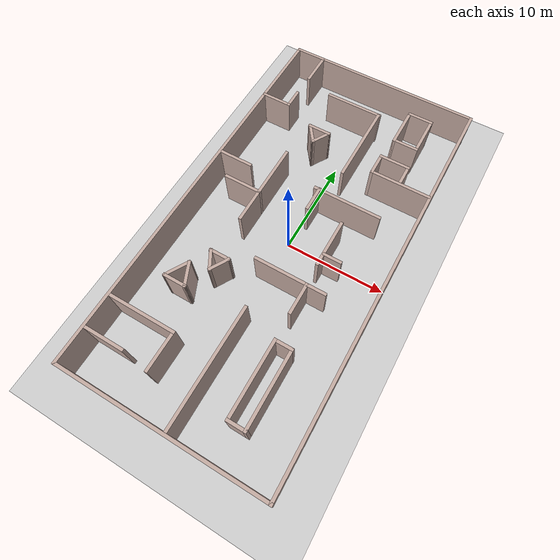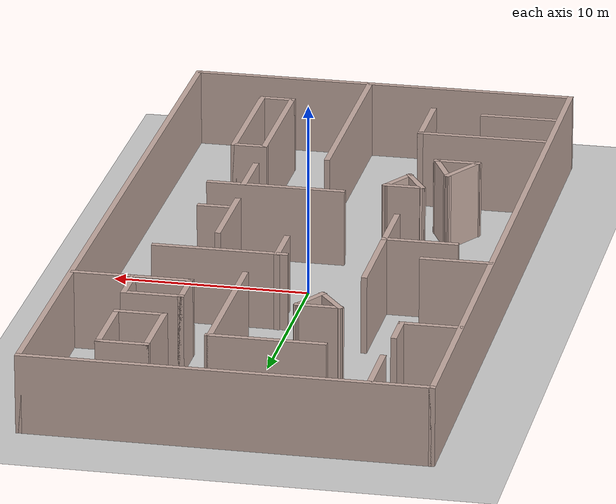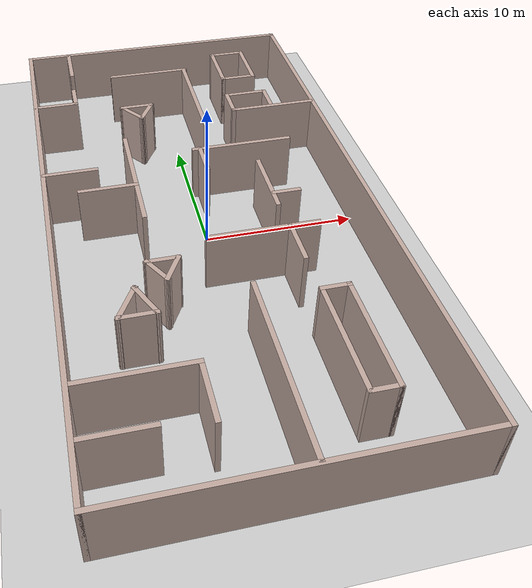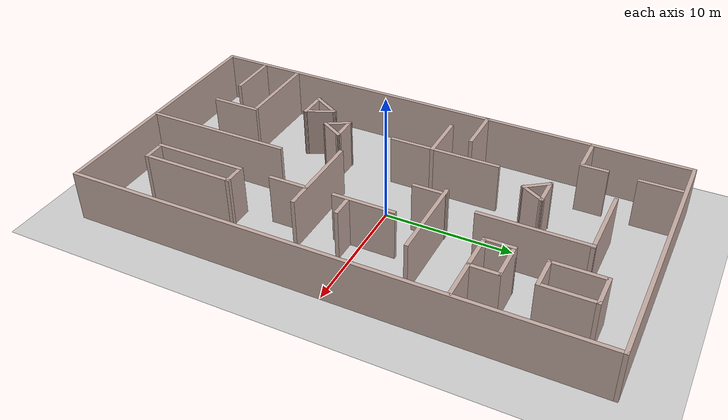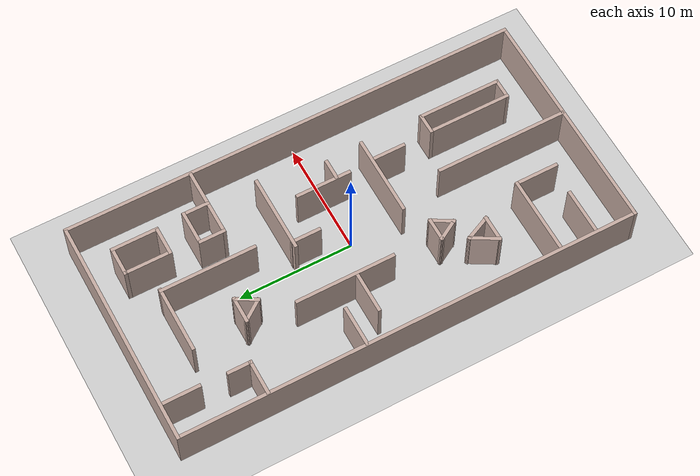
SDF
<sdf version="1.7">
 <world name="default">
  <plugin name="ros_interface_plugin" filename="librotors_gazebo_ros_interface_plugin.so"/>
  <light name="sun" type="directional">
   <pose>0 0 10 0 -0 0</pose>
   <diffuse>0.8 0.8 0.8 1</diffuse>
   <specular>0.2 0.2 0.2 1</specular>
   <attenuation>
    <range>1000</range>
    <constant>0.9</constant>
    <linear>0.01</linear>
    <quadratic>0.001</quadratic>
   </attenuation>
   <direction>-0.5 0.1 -0.9</direction>
   <spot><inner_angle>0</inner_angle><outer_angle>0</outer_angle><falloff>0</falloff></spot>
  </light>
  <model name="ground_plane">
   <static>1</static>
   <link name="link">
    <collision name="collision">
     <geometry><plane><normal>0 0 1</normal><size>100 100</size></plane></geometry>
     <surface><friction><ode><mu>100</mu><mu2>50</mu2></ode></friction></surface>
    </collision>
    <visual name="visual">
     <cast_shadows>0</cast_shadows>
     <geometry><plane><normal>0 0 1</normal><size>100 100</size></plane></geometry>
     <material>
      <script><uri>file://media/materials/scripts/gazebo.material</uri><name>Gazebo/Grey</name></script>
     </material>
    </visual>
   </link>
  </model>
  <gravity>0 0 -9.8</gravity>
  <magnetic_field>6e-06 2.3e-05 -4.2e-05</magnetic_field>
  <atmosphere type="adiabatic"/>
  <physics type="ode">
   <max_step_size>0.001</max_step_size>
   <real_time_factor>1</real_time_factor>
   <real_time_update_rate>1000</real_time_update_rate>
  </physics>
  <scene><ambient>0.4 0.4 0.4 1</ambient><background>0.7 0.7 0.7 1</background><shadows>1</shadows></scene>
  <spherical_coordinates>
   <surface_model>EARTH_WGS84</surface_model>
   <latitude_deg>0</latitude_deg>
   <longitude_deg>0</longitude_deg>
   <elevation>0</elevation>
   <heading_deg>0</heading_deg>
  </spherical_coordinates>
  <model name="Untitled">
   <link name="Wall_0">
    <collision name="Wall_0_Collision">
     <geometry><box><size>40.3 0.3 4</size></box></geometry>
     <pose>0 0 2 0 -0 0</pose>
    </collision>
    <visual name="Wall_0_Visual">
     <pose>0 0 2 0 -0 0</pose>
     <geometry><box><size>40.3 0.3 4</size></box></geometry>
     <material>
      <script><uri>file://media/materials/scripts/gazebo.material</uri><name>Gazebo/Grey</name></script>
      <ambient>0.760784 0.662745 0.627451 1</ambient>
     </material>
     <meta><layer>0</layer></meta>
    </visual>
    <pose>10 0 0 0 -0 1.5708</pose>
   </link>
   <link name="Wall_11">
    <collision name="Wall_11_Collision">
     <geometry><box><size>4 0.3 4</size></box></geometry>
     <pose>0 0 2 0 -0 0</pose>
    </collision>
    <visual name="Wall_11_Visual">
     <pose>0 0 2 0 -0 0</pose>
     <geometry><box><size>4 0.3 4</size></box></geometry>
     <material>
      <script><uri>file://media/materials/scripts/gazebo.material</uri><name>Gazebo/Grey</name></script>
      <ambient>0.760784 0.662745 0.627451 1</ambient>
     </material>
     <meta><layer>0</layer></meta>
    </visual>
    <pose>-7.854 -16.478 0 0 -0 0</pose>
   </link>
   <link name="Wall_13">
    <collision name="Wall_13_Collision">
     <geometry><box><size>11.6501 0.3 4</size></box></geometry>
     <pose>0 0 2 0 -0 0</pose>
    </collision>
    <visual name="Wall_13_Visual">
     <pose>0 0 2 0 -0 0</pose>
     <geometry><box><size>11.6501 0.3 4</size></box></geometry>
     <material>
      <script><uri>file://media/materials/scripts/gazebo.material</uri><name>Gazebo/Grey</name></script>
      <ambient>0.760784 0.662745 0.627451 1</ambient>
     </material>
     <meta><layer>0</layer></meta>
    </visual>
    <pose>0.727 -14.19 0 0 -0 -1.5708</pose>
   </link>
   <link name="Wall_16">
    <collision name="Wall_16_Collision">
     <geometry><box><size>7.14963 0.3 4</size></box></geometry>
     <pose>0 0 2 0 -0 0</pose>
    </collision>
    <visual name="Wall_16_Visual">
     <pose>0 0 2 0 -0 0</pose>
     <geometry><box><size>7.14963 0.3 4</size></box></geometry>
     <material>
      <script><uri>file://media/materials/scripts/gazebo.material</uri><name>Gazebo/Grey</name></script>
      <ambient>0.760784 0.662745 0.627451 1</ambient>
     </material>
     <meta><layer>0</layer></meta>
    </visual>
    <pose>2.538 -4.211 0 0 -0 0</pose>
   </link>
   <link name="Wall_18">
    <collision name="Wall_18_Collision">
     <geometry><box><size>4.9 0.3 4</size></box></geometry>
     <pose>0 0 2 0 -0 0</pose>
    </collision>
    <visual name="Wall_18_Visual">
     <pose>0 0 2 0 -0 0</pose>
     <geometry><box><size>4.9 0.3 4</size></box></geometry>
     <material>
      <script><uri>file://media/materials/scripts/gazebo.material</uri><name>Gazebo/Grey</name></script>
      <ambient>0.760784 0.662745 0.627451 1</ambient>
     </material>
     <meta><layer>0</layer></meta>
    </visual>
    <pose>4.063 0.269 0 0 -0 -1.5708</pose>
   </link>
   <link name="Wall_2">
    <collision name="Wall_2_Collision">
     <geometry><box><size>40.3 0.3 4</size></box></geometry>
     <pose>0 0 2 0 -0 0</pose>
    </collision>
    <visual name="Wall_2_Visual">
     <pose>0 0 2 0 -0 0</pose>
     <geometry><box><size>40.3 0.3 4</size></box></geometry>
     <material>
      <script><uri>file://media/materials/scripts/gazebo.material</uri><name>Gazebo/Grey</name></script>
      <ambient>0.760784 0.662745 0.627451 1</ambient>
     </material>
     <meta><layer>0</layer></meta>
    </visual>
    <pose>-10 0 0 0 -0 1.5708</pose>
   </link>
   <link name="Wall_20">
    <collision name="Wall_20_Collision">
     <geometry><box><size>8.75 0.3 4</size></box></geometry>
     <pose>0 0 2 0 -0 0</pose>
    </collision>
    <visual name="Wall_20_Visual">
     <pose>0 0 2 0 -0 0</pose>
     <geometry><box><size>8.75 0.3 4</size></box></geometry>
     <material>
      <script><uri>file://media/materials/scripts/gazebo.material</uri><name>Gazebo/Grey</name></script>
      <ambient>0.760784 0.662745 0.627451 1</ambient>
     </material>
     <meta><layer>0</layer></meta>
    </visual>
    <pose>-4.223 2.777 0 0 -0 -1.5708</pose>
   </link>
   <link name="Wall_23">
    <collision name="Wall_23_Collision">
     <geometry><box><size>6.89976 0.3 4</size></box></geometry>
     <pose>0 0 2 0 -0 0</pose>
    </collision>
    <visual name="Wall_23_Visual">
     <pose>0 0 2 0 -0 0</pose>
     <geometry><box><size>6.89976 0.3 4</size></box></geometry>
     <material>
      <script><uri>file://media/materials/scripts/gazebo.material</uri><name>Gazebo/Grey</name></script>
      <ambient>0.760784 0.662745 0.627451 1</ambient>
     </material>
     <meta><layer>0</layer></meta>
    </visual>
    <pose>3.489 4.829 0 0 -0 0</pose>
   </link>
   <link name="Wall_26">
    <collision name="Wall_26_Collision">
     <geometry><box><size>7.39988 0.3 4</size></box></geometry>
     <pose>0 0 2 0 -0 0</pose>
    </collision>
    <visual name="Wall_26_Visual">
     <pose>0 0 2 0 -0 0</pose>
     <geometry><box><size>7.39988 0.3 4</size></box></geometry>
     <material>
      <script><uri>file://media/materials/scripts/gazebo.material</uri><name>Gazebo/Grey</name></script>
      <ambient>0.760784 0.662745 0.627451 1</ambient>
     </material>
     <meta><layer>0</layer></meta>
    </visual>
    <pose>4.278 -13.249 0 0 -0 -1.5708</pose>
   </link>
   <link name="Wall_27">
    <collision name="Wall_27_Collision">
     <geometry><box><size>1.90004 0.3 4</size></box></geometry>
     <pose>0 0 2 0 -0 0</pose>
    </collision>
    <visual name="Wall_27_Visual">
     <pose>0 0 2 0 -0 0</pose>
     <geometry><box><size>1.90004 0.3 4</size></box></geometry>
     <material>
      <script><uri>file://media/materials/scripts/gazebo.material</uri><name>Gazebo/Grey</name></script>
      <ambient>0.760784 0.662745 0.627451 1</ambient>
     </material>
     <meta><layer>0</layer></meta>
    </visual>
    <pose>5.078 -16.799 0 0 -0 0</pose>
   </link>
   <link name="Wall_28">
    <collision name="Wall_28_Collision">
     <geometry><box><size>7.4 0.3 4</size></box></geometry>
     <pose>0 0 2 0 -0 0</pose>
    </collision>
    <visual name="Wall_28_Visual">
     <pose>0 0 2 0 -0 0</pose>
     <geometry><box><size>7.4 0.3 4</size></box></geometry>
     <material>
      <script><uri>file://media/materials/scripts/gazebo.material</uri><name>Gazebo/Grey</name></script>
      <ambient>0.760784 0.662745 0.627451 1</ambient>
     </material>
     <meta><layer>0</layer></meta>
    </visual>
    <pose>5.878 -13.249 0 0 -0 1.5708</pose>
   </link>
   <link name="Wall_29">
    <collision name="Wall_29_Collision">
     <geometry><box><size>1.9 0.3 4</size></box></geometry>
     <pose>0 0 2 0 -0 0</pose>
    </collision>
    <visual name="Wall_29_Visual">
     <pose>0 0 2 0 -0 0</pose>
     <geometry><box><size>1.9 0.3 4</size></box></geometry>
     <material>
      <script><uri>file://media/materials/scripts/gazebo.material</uri><name>Gazebo/Grey</name></script>
      <ambient>0.760784 0.662745 0.627451 1</ambient>
     </material>
     <meta><layer>0</layer></meta>
    </visual>
    <pose>5.078 -9.699 0 0 -0 3.14159</pose>
   </link>
   <link name="Wall_31">
    <collision name="Wall_31_Collision">
     <geometry><box><size>2.64986 0.3 4</size></box></geometry>
     <pose>0 0 2 0 -0 0</pose>
    </collision>
    <visual name="Wall_31_Visual">
     <pose>0 0 2 0 -0 0</pose>
     <geometry><box><size>2.64986 0.3 4</size></box></geometry>
     <material>
      <script><uri>file://media/materials/scripts/gazebo.material</uri><name>Gazebo/Grey</name></script>
      <ambient>0.760784 0.662745 0.627451 1</ambient>
     </material>
     <meta><layer>0</layer></meta>
    </visual>
    <pose>-6.3175 -8.4565 0 0 -0 -2.09443</pose>
   </link>
   <link name="Wall_32">
    <collision name="Wall_32_Collision">
     <geometry><box><size>2.4 0.3 4</size></box></geometry>
     <pose>0 0 2 0 -0 0</pose>
    </collision>
    <visual name="Wall_32_Visual">
     <pose>0 0 2 0 -0 0</pose>
     <geometry><box><size>2.4 0.3 4</size></box></geometry>
     <material>
      <script><uri>file://media/materials/scripts/gazebo.material</uri><name>Gazebo/Grey</name></script>
      <ambient>0.760784 0.662745 0.627451 1</ambient>
     </material>
     <meta><layer>0</layer></meta>
    </visual>
    <pose>-5.855 -9.474 0 0 -0 0</pose>
   </link>
   <link name="Wall_33">
    <collision name="Wall_33_Collision">
     <geometry><box><size>2.53532 0.3 4</size></box></geometry>
     <pose>0 0 2 0 -0 0</pose>
    </collision>
    <visual name="Wall_33_Visual">
     <pose>0 0 2 0 -0 0</pose>
     <geometry><box><size>2.53532 0.3 4</size></box></geometry>
     <material>
      <script><uri>file://media/materials/scripts/gazebo.material</uri><name>Gazebo/Grey</name></script>
      <ambient>0.760784 0.662745 0.627451 1</ambient>
     </material>
     <meta><layer>0</layer></meta>
    </visual>
    <pose>-5.2675 -8.4565 0 0 -0 1.99742</pose>
   </link>
   <link name="Wall_35">
    <collision name="Wall_35_Collision">
     <geometry><box><size>3.90036 0.3 4</size></box></geometry>
     <pose>0 0 2 0 -0 0</pose>
    </collision>
    <visual name="Wall_35_Visual">
     <pose>0 0 2 0 -0 0</pose>
     <geometry><box><size>3.90036 0.3 4</size></box></geometry>
     <material>
      <script><uri>file://media/materials/scripts/gazebo.material</uri><name>Gazebo/Grey</name></script>
      <ambient>0.760784 0.662745 0.627451 1</ambient>
     </material>
     <meta><layer>0</layer></meta>
    </visual>
    <pose>-6.023 1.816 0 0 -0 3.14159</pose>
   </link>
   <link name="Wall_37">
    <collision name="Wall_37_Collision">
     <geometry><box><size>6.15 0.3 4</size></box></geometry>
     <pose>0 0 2 0 -0 0</pose>
    </collision>
    <visual name="Wall_37_Visual">
     <pose>0 0 2 0 -0 0</pose>
     <geometry><box><size>6.15 0.3 4</size></box></geometry>
     <material>
      <script><uri>file://media/materials/scripts/gazebo.material</uri><name>Gazebo/Grey</name></script>
      <ambient>0.760784 0.662745 0.627451 1</ambient>
     </material>
     <meta><layer>0</layer></meta>
    </visual>
    <pose>6.949 9.133 0 0 -0 3.14159</pose>
   </link>
   <link name="Wall_38">
    <collision name="Wall_38_Collision">
     <geometry><box><size>2.4 0.3 4</size></box></geometry>
     <pose>0 0 2 0 -0 0</pose>
    </collision>
    <visual name="Wall_38_Visual">
     <pose>0 0 2 0 -0 0</pose>
     <geometry><box><size>2.4 0.3 4</size></box></geometry>
     <material>
      <script><uri>file://media/materials/scripts/gazebo.material</uri><name>Gazebo/Grey</name></script>
      <ambient>0.760784 0.662745 0.627451 1</ambient>
     </material>
     <meta><layer>0</layer></meta>
    </visual>
    <pose>4.024 10.183 0 0 -0 1.5708</pose>
   </link>
   <link name="Wall_39">
    <collision name="Wall_39_Collision">
     <geometry><box><size>3.15 0.3 4</size></box></geometry>
     <pose>0 0 2 0 -0 0</pose>
    </collision>
    <visual name="Wall_39_Visual">
     <pose>0 0 2 0 -0 0</pose>
     <geometry><box><size>3.15 0.3 4</size></box></geometry>
     <material>
      <script><uri>file://media/materials/scripts/gazebo.material</uri><name>Gazebo/Grey</name></script>
      <ambient>0.760784 0.662745 0.627451 1</ambient>
     </material>
     <meta><layer>0</layer></meta>
    </visual>
    <pose>5.449 11.233 0 0 -0 0</pose>
   </link>
   <link name="Wall_4">
    <collision name="Wall_4_Collision">
     <geometry><box><size>20.3 0.3 4</size></box></geometry>
     <pose>0 0 2 0 -0 0</pose>
    </collision>
    <visual name="Wall_4_Visual">
     <pose>0 0 2 0 -0 0</pose>
     <geometry><box><size>20.3 0.3 4</size></box></geometry>
     <material>
      <script><uri>file://media/materials/scripts/gazebo.material</uri><name>Gazebo/Grey</name></script>
      <ambient>0.760784 0.662745 0.627451 1</ambient>
     </material>
     <meta><layer>0</layer></meta>
    </visual>
    <pose>0 -20 0 0 -0 0</pose>
   </link>
   <link name="Wall_40">
    <collision name="Wall_40_Collision">
     <geometry><box><size>2.39967 0.3 4</size></box></geometry>
     <pose>0 0 2 0 -0 0</pose>
    </collision>
    <visual name="Wall_40_Visual">
     <pose>0 0 2 0 -0 0</pose>
     <geometry><box><size>2.39967 0.3 4</size></box></geometry>
     <material>
      <script><uri>file://media/materials/scripts/gazebo.material</uri><name>Gazebo/Grey</name></script>
      <ambient>0.760784 0.662745 0.627451 1</ambient>
     </material>
     <meta><layer>0</layer></meta>
    </visual>
    <pose>6.874 10.183 0 0 -0 -1.5708</pose>
   </link>
   <link name="Wall_43">
    <collision name="Wall_43_Collision">
     <geometry><box><size>8.4 0.3 4</size></box></geometry>
     <pose>0 0 2 0 -0 0</pose>
    </collision>
    <visual name="Wall_43_Visual">
     <pose>0 0 2 0 -0 0</pose>
     <geometry><box><size>8.4 0.3 4</size></box></geometry>
     <material>
      <script><uri>file://media/materials/scripts/gazebo.material</uri><name>Gazebo/Grey</name></script>
      <ambient>0.760784 0.662745 0.627451 1</ambient>
     </material>
     <meta><layer>0</layer></meta>
    </visual>
    <pose>1.61227 11.733 0 0 -0 1.5708</pose>
   </link>
   <link name="Wall_44">
    <collision name="Wall_44_Collision">
     <geometry><box><size>5.96285 0.3 4</size></box></geometry>
     <pose>0 0 2 0 -0 0</pose>
    </collision>
    <visual name="Wall_44_Visual">
     <pose>0 0 2 0 -0 0</pose>
     <geometry><box><size>5.96285 0.3 4</size></box></geometry>
     <material>
      <script><uri>file://media/materials/scripts/gazebo.material</uri><name>Gazebo/Grey</name></script>
      <ambient>0.760784 0.662745 0.627451 1</ambient>
     </material>
     <meta><layer>0</layer></meta>
    </visual>
    <pose>-1.12558 15.783 0 0 -0 3.14159</pose>
   </link>
   <link name="Wall_46">
    <collision name="Wall_46_Collision">
     <geometry><box><size>3.40022 0.3 4</size></box></geometry>
     <pose>0 0 2 0 -0 0</pose>
    </collision>
    <visual name="Wall_46_Visual">
     <pose>0 0 2 0 -0 0</pose>
     <geometry><box><size>3.40022 0.3 4</size></box></geometry>
     <material>
      <script><uri>file://media/materials/scripts/gazebo.material</uri><name>Gazebo/Grey</name></script>
      <ambient>0.760784 0.662745 0.627451 1</ambient>
     </material>
     <meta><layer>0</layer></meta>
    </visual>
    <pose>-6.996 18.298 0 0 -0 -1.5708</pose>
   </link>
   <link name="Wall_49">
    <collision name="Wall_49_Collision">
     <geometry><box><size>2.15 0.3 4</size></box></geometry>
     <pose>0 0 2 0 -0 0</pose>
    </collision>
    <visual name="Wall_49_Visual">
     <pose>0 0 2 0 -0 0</pose>
     <geometry><box><size>2.15 0.3 4</size></box></geometry>
     <material>
      <script><uri>file://media/materials/scripts/gazebo.material</uri><name>Gazebo/Grey</name></script>
      <ambient>0.760784 0.662745 0.627451 1</ambient>
     </material>
     <meta><layer>0</layer></meta>
    </visual>
    <pose>-7.09 13.402 0 0 -0 -1.5708</pose>
   </link>
   <link name="Wall_50">
    <collision name="Wall_50_Collision">
     <geometry><box><size>3.14994 0.3 4</size></box></geometry>
     <pose>0 0 2 0 -0 0</pose>
    </collision>
    <visual name="Wall_50_Visual">
     <pose>0 0 2 0 -0 0</pose>
     <geometry><box><size>3.14994 0.3 4</size></box></geometry>
     <material>
      <script><uri>file://media/materials/scripts/gazebo.material</uri><name>Gazebo/Grey</name></script>
      <ambient>0.760784 0.662745 0.627451 1</ambient>
     </material>
     <meta><layer>0</layer></meta>
    </visual>
    <pose>-8.515 12.477 0 0 -0 3.14159</pose>
   </link>
   <link name="Wall_52">
    <collision name="Wall_52_Collision">
     <geometry><box><size>2.40023 0.3 4</size></box></geometry>
     <pose>0 0 2 0 -0 0</pose>
    </collision>
    <visual name="Wall_52_Visual">
     <pose>0 0 2 0 -0 0</pose>
     <geometry><box><size>2.40023 0.3 4</size></box></geometry>
     <material>
      <script><uri>file://media/materials/scripts/gazebo.material</uri><name>Gazebo/Grey</name></script>
      <ambient>0.760784 0.662745 0.627451 1</ambient>
     </material>
     <meta><layer>0</layer></meta>
    </visual>
    <pose>-2.765 11.145 0 0 -0 0</pose>
   </link>
   <link name="Wall_53">
    <collision name="Wall_53_Collision">
     <geometry><box><size>2.14987 0.3 4</size></box></geometry>
     <pose>0 0 2 0 -0 0</pose>
    </collision>
    <visual name="Wall_53_Visual">
     <pose>0 0 2 0 -0 0</pose>
     <geometry><box><size>2.14987 0.3 4</size></box></geometry>
     <material>
      <script><uri>file://media/materials/scripts/gazebo.material</uri><name>Gazebo/Grey</name></script>
      <ambient>0.760784 0.662745 0.627451 1</ambient>
     </material>
     <meta><layer>0</layer></meta>
    </visual>
    <pose>-2.1775 10.344 0 0 -0 -2.09443</pose>
   </link>
   <link name="Wall_55">
    <collision name="Wall_55_Collision">
     <geometry><box><size>2.28681 0.3 4</size></box></geometry>
     <pose>0 0 2 0 -0 0</pose>
    </collision>
    <visual name="Wall_55_Visual">
     <pose>0 0 2 0 -0 0</pose>
     <geometry><box><size>2.28681 0.3 4</size></box></geometry>
     <material>
      <script><uri>file://media/materials/scripts/gazebo.material</uri><name>Gazebo/Grey</name></script>
      <ambient>0.760784 0.662745 0.627451 1</ambient>
     </material>
     <meta><layer>0</layer></meta>
    </visual>
    <pose>-3.2275 10.344 0 0 -0 -0.937966</pose>
   </link>
   <link name="Wall_57">
    <collision name="Wall_57_Collision">
     <geometry><box><size>2.65041 0.3 4</size></box></geometry>
     <pose>0 0 2 0 -0 0</pose>
    </collision>
    <visual name="Wall_57_Visual">
     <pose>0 0 2 0 -0 0</pose>
     <geometry><box><size>2.65041 0.3 4</size></box></geometry>
     <material>
      <script><uri>file://media/materials/scripts/gazebo.material</uri><name>Gazebo/Grey</name></script>
      <ambient>0.760784 0.662745 0.627451 1</ambient>
     </material>
     <meta><layer>0</layer></meta>
    </visual>
    <pose>0.583 3.701 0 0 -0 -1.5708</pose>
   </link>
   <link name="Wall_59">
    <collision name="Wall_59_Collision">
     <geometry><box><size>1.90021 0.3 4</size></box></geometry>
     <pose>0 0 2 0 -0 0</pose>
    </collision>
    <visual name="Wall_59_Visual">
     <pose>0 0 2 0 -0 0</pose>
     <geometry><box><size>1.90021 0.3 4</size></box></geometry>
     <material>
      <script><uri>file://media/materials/scripts/gazebo.material</uri><name>Gazebo/Grey</name></script>
      <ambient>0.760784 0.662745 0.627451 1</ambient>
     </material>
     <meta><layer>0</layer></meta>
    </visual>
    <pose>4.939 -0.926 0 0 -0 0</pose>
   </link>
   <link name="Wall_6">
    <collision name="Wall_6_Collision">
     <geometry><box><size>20.3 0.3 4</size></box></geometry>
     <pose>0 0 2 0 -0 0</pose>
    </collision>
    <visual name="Wall_6_Visual">
     <pose>0 0 2 0 -0 0</pose>
     <geometry><box><size>20.3 0.3 4</size></box></geometry>
     <material>
      <script><uri>file://media/materials/scripts/gazebo.material</uri><name>Gazebo/Grey</name></script>
      <ambient>0.760784 0.662745 0.627451 1</ambient>
     </material>
     <meta><layer>0</layer></meta>
    </visual>
    <pose>0 20 0 0 -0 0</pose>
   </link>
   <link name="Wall_61">
    <collision name="Wall_61_Collision">
     <geometry><box><size>2.15056 0.3 4</size></box></geometry>
     <pose>0 0 2 0 -0 0</pose>
    </collision>
    <visual name="Wall_61_Visual">
     <pose>0 0 2 0 -0 0</pose>
     <geometry><box><size>2.15056 0.3 4</size></box></geometry>
     <material>
      <script><uri>file://media/materials/scripts/gazebo.material</uri><name>Gazebo/Grey</name></script>
      <ambient>0.760784 0.662745 0.627451 1</ambient>
     </material>
     <meta><layer>0</layer></meta>
    </visual>
    <pose>-4.2885 -6.3125 0 0 -0 -1.04743</pose>
   </link>
   <link name="Wall_62">
    <collision name="Wall_62_Collision">
     <geometry><box><size>2.15065 0.3 4</size></box></geometry>
     <pose>0 0 2 0 -0 0</pose>
    </collision>
    <visual name="Wall_62_Visual">
     <pose>0 0 2 0 -0 0</pose>
     <geometry><box><size>2.15065 0.3 4</size></box></geometry>
     <material>
      <script><uri>file://media/materials/scripts/gazebo.material</uri><name>Gazebo/Grey</name></script>
      <ambient>0.760784 0.662745 0.627451 1</ambient>
     </material>
     <meta><layer>0</layer></meta>
    </visual>
    <pose>-3.3635 -6.3125 0 0 -0 1.04743</pose>
   </link>
   <link name="Wall_63">
    <collision name="Wall_63_Collision">
     <geometry><box><size>2.15 0.3 4</size></box></geometry>
     <pose>0 0 2 0 -0 0</pose>
    </collision>
    <visual name="Wall_63_Visual">
     <pose>0 0 2 0 -0 0</pose>
     <geometry><box><size>2.15 0.3 4</size></box></geometry>
     <material>
      <script><uri>file://media/materials/scripts/gazebo.material</uri><name>Gazebo/Grey</name></script>
      <ambient>0.760784 0.662745 0.627451 1</ambient>
     </material>
     <meta><layer>0</layer></meta>
    </visual>
    <pose>-3.826 -5.511 0 0 -0 3.14159</pose>
   </link>
   <link name="Wall_66">
    <collision name="Wall_66_Collision">
     <geometry><box><size>2.65 0.3 4</size></box></geometry>
     <pose>0 0 2 0 -0 0</pose>
    </collision>
    <visual name="Wall_66_Visual">
     <pose>0 0 2 0 -0 0</pose>
     <geometry><box><size>2.65 0.3 4</size></box></geometry>
     <material>
      <script><uri>file://media/materials/scripts/gazebo.material</uri><name>Gazebo/Grey</name></script>
      <ambient>0.760784 0.662745 0.627451 1</ambient>
     </material>
     <meta><layer>0</layer></meta>
    </visual>
    <pose>5.501 13.672 0 0 -0 0</pose>
   </link>
   <link name="Wall_67">
    <collision name="Wall_67_Collision">
     <geometry><box><size>4.14975 0.3 4</size></box></geometry>
     <pose>0 0 2 0 -0 0</pose>
    </collision>
    <visual name="Wall_67_Visual">
     <pose>0 0 2 0 -0 0</pose>
     <geometry><box><size>4.14975 0.3 4</size></box></geometry>
     <material>
      <script><uri>file://media/materials/scripts/gazebo.material</uri><name>Gazebo/Grey</name></script>
      <ambient>0.760784 0.662745 0.627451 1</ambient>
     </material>
     <meta><layer>0</layer></meta>
    </visual>
    <pose>6.676 15.597 0 0 -0 1.5708</pose>
   </link>
   <link name="Wall_70">
    <collision name="Wall_70_Collision">
     <geometry><box><size>2.65 0.3 4</size></box></geometry>
     <pose>0 0 2 0 -0 0</pose>
    </collision>
    <visual name="Wall_70_Visual">
     <pose>0 0 2 0 -0 0</pose>
     <geometry><box><size>2.65 0.3 4</size></box></geometry>
     <material>
      <script><uri>file://media/materials/scripts/gazebo.material</uri><name>Gazebo/Grey</name></script>
      <ambient>0.760784 0.662745 0.627451 1</ambient>
     </material>
     <meta><layer>0</layer></meta>
    </visual>
    <pose>5.501 17.522 0 0 -0 3.14159</pose>
   </link>
   <link name="Wall_71">
    <collision name="Wall_71_Collision">
     <geometry><box><size>4.15 0.3 4</size></box></geometry>
     <pose>0 0 2 0 -0 0</pose>
    </collision>
    <visual name="Wall_71_Visual">
     <pose>0 0 2 0 -0 0</pose>
     <geometry><box><size>4.15 0.3 4</size></box></geometry>
     <material>
      <script><uri>file://media/materials/scripts/gazebo.material</uri><name>Gazebo/Grey</name></script>
      <ambient>0.760784 0.662745 0.627451 1</ambient>
     </material>
     <meta><layer>0</layer></meta>
    </visual>
    <pose>4.326 15.597 0 0 -0 -1.5708</pose>
   </link>
   <link name="Wall_74">
    <collision name="Wall_74_Collision">
     <geometry><box><size>3.65007 0.3 4</size></box></geometry>
     <pose>0 0 2 0 -0 0</pose>
    </collision>
    <visual name="Wall_74_Visual">
     <pose>0 0 2 0 -0 0</pose>
     <geometry><box><size>3.65007 0.3 4</size></box></geometry>
     <material>
      <script><uri>file://media/materials/scripts/gazebo.material</uri><name>Gazebo/Grey</name></script>
      <ambient>0.760784 0.662745 0.627451 1</ambient>
     </material>
     <meta><layer>0</layer></meta>
    </visual>
    <pose>-8.242 4.009 0 0 -0 0</pose>
   </link>
   <link name="Wall_78">
    <collision name="Wall_78_Collision">
     <geometry><box><size>3.14987 0.3 4</size></box></geometry>
     <pose>0 0 2 0 -0 0</pose>
    </collision>
    <visual name="Wall_78_Visual">
     <pose>0 0 2 0 -0 0</pose>
     <geometry><box><size>3.14987 0.3 4</size></box></geometry>
     <material>
      <script><uri>file://media/materials/scripts/gazebo.material</uri><name>Gazebo/Grey</name></script>
      <ambient>0.760784 0.662745 0.627451 1</ambient>
     </material>
     <meta><layer>0</layer></meta>
    </visual>
    <pose>4.199 -5.651 0 0 -0 -1.5708</pose>
   </link>
   <link name="Wall_8">
    <collision name="Wall_8_Collision">
     <geometry><box><size>6.75 0.3 4</size></box></geometry>
     <pose>0 0 2 0 -0 0</pose>
    </collision>
    <visual name="Wall_8_Visual">
     <pose>0 0 2 0 -0 0</pose>
     <geometry><box><size>6.75 0.3 4</size></box></geometry>
     <material>
      <script><uri>file://media/materials/scripts/gazebo.material</uri><name>Gazebo/Grey</name></script>
      <ambient>0.760784 0.662745 0.627451 1</ambient>
     </material>
     <meta><layer>0</layer></meta>
    </visual>
    <pose>-6.479 -13.25 0 0 -0 0</pose>
   </link>
   <link name="Wall_9">
    <collision name="Wall_9_Collision">
     <geometry><box><size>3.9 0.3 4</size></box></geometry>
     <pose>0 0 2 0 -0 0</pose>
    </collision>
    <visual name="Wall_9_Visual">
     <pose>0 0 2 0 -0 0</pose>
     <geometry><box><size>3.9 0.3 4</size></box></geometry>
     <material>
      <script><uri>file://media/materials/scripts/gazebo.material</uri><name>Gazebo/Grey</name></script>
      <ambient>0.760784 0.662745 0.627451 1</ambient>
     </material>
     <meta><layer>0</layer></meta>
    </visual>
    <pose>-3.254 -15.05 0 0 -0 -1.5708</pose>
   </link>
   <static>1</static>
  </model>
 </world>
</sdf>
